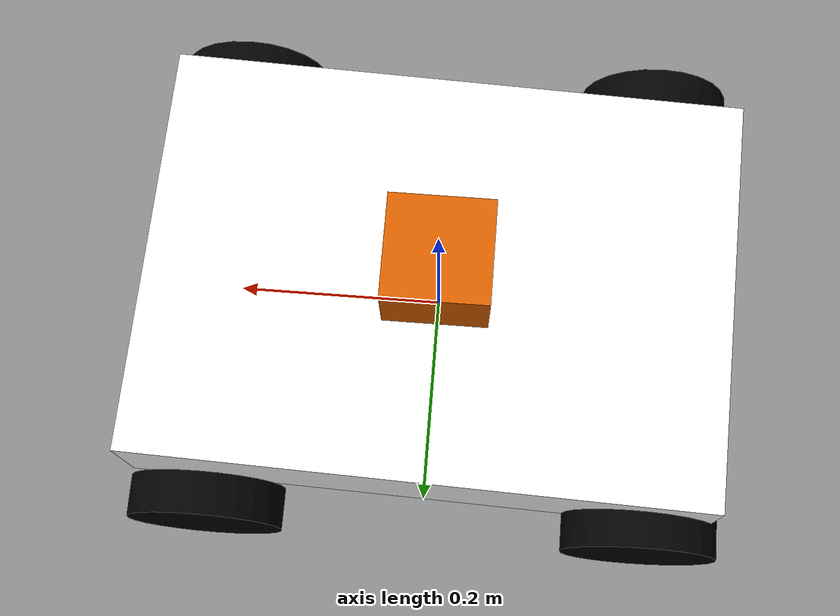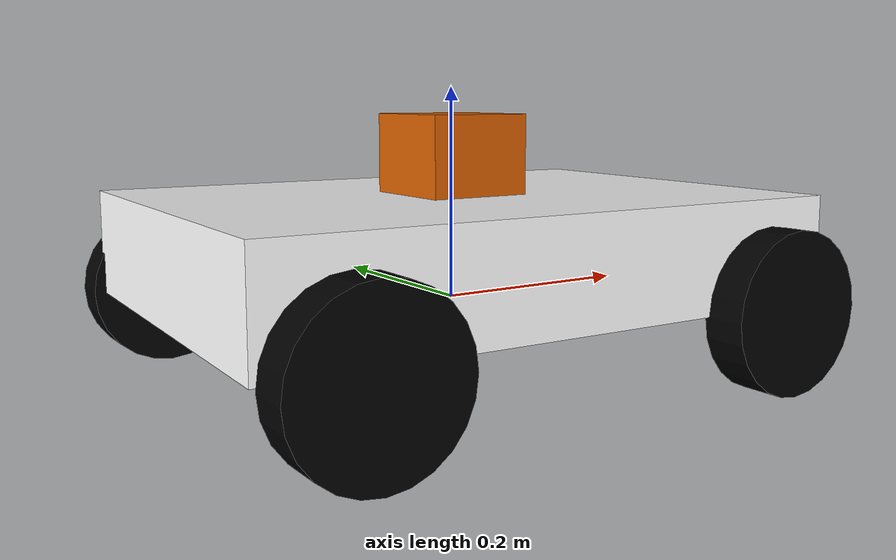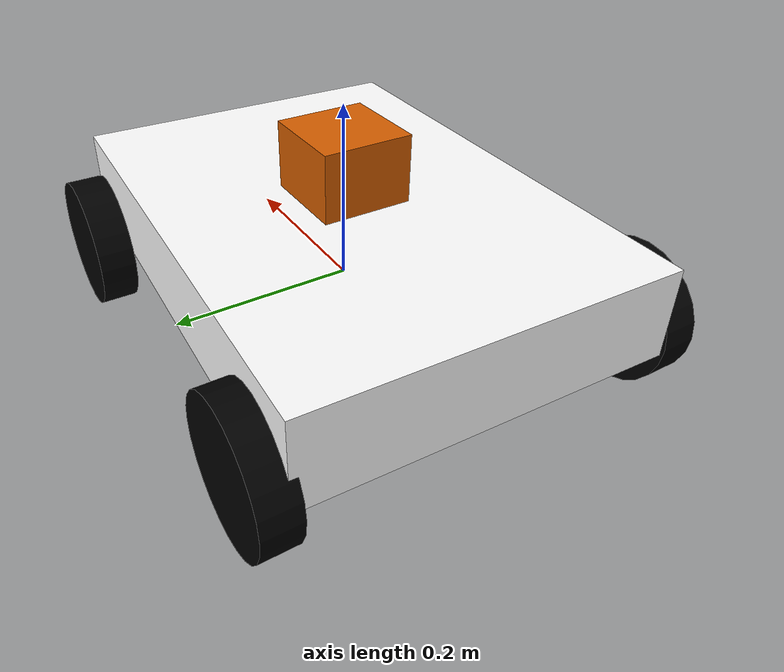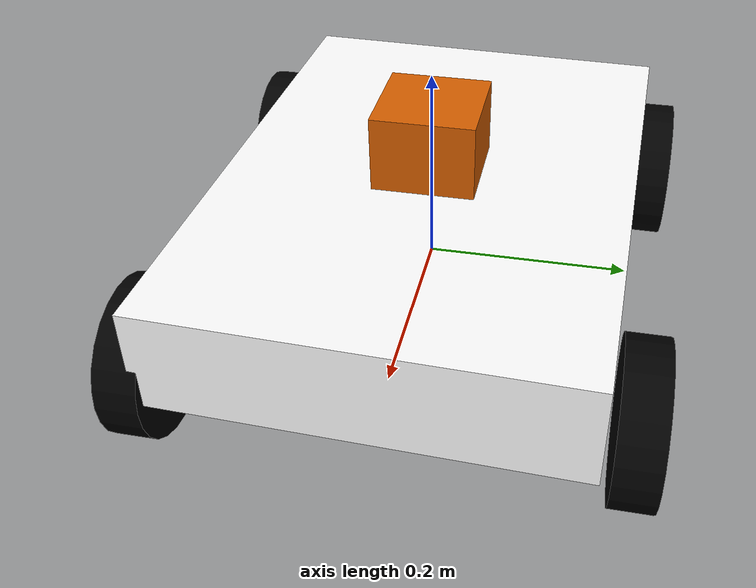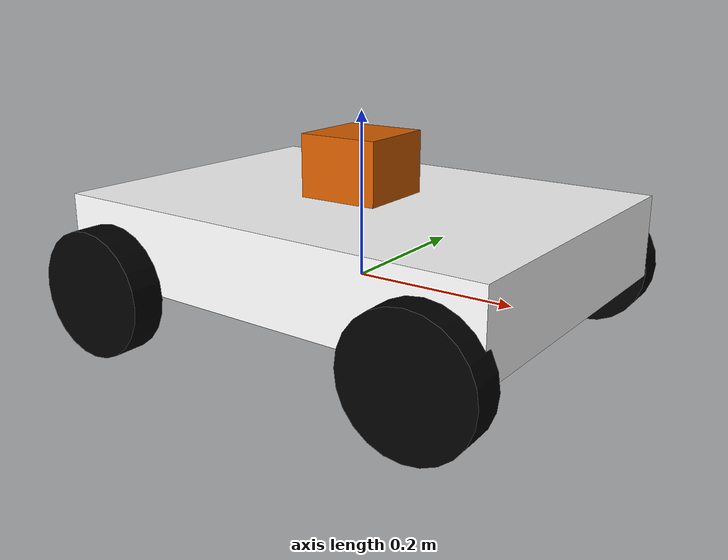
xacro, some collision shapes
<?xml version="1.0"?>

<robot xmlns:xacro="http://www.ros.org/wiki/xacro"
 	xmlns:sensor="http://playerstage.sourceforge.net/gazebo/xmlschema/#sensor"
    	xmlns:controller="http://playerstage.sourceforge.net/gazebo/xmlschema/#controller"
    	xmlns:interface="http://playerstage.sourceforge.net/gazebo/xmlschema/#interface"
	name="robot1_xacro">

	<xacro:property name="length_wheel" value="0.04" />
	<xacro:property name="radius_wheel" value="0.075" />
	<!--xacro:property name="camera_link" value="0.05" /-->
	<xacro:macro name="default_inertial" params="mass">
               <inertial>
                       <mass value="${mass}" />
                       <inertia ixx="1.0" ixy="0.0" ixz="0.0"
                                iyy="1.0" iyz="0.0"
                                izz="1.0" />
               </inertial>
	</xacro:macro>

	<link name="base_link">
   		<visual>
			<geometry>
      				<box size="0.4 .56 .1"/>
     			</geometry>
			<origin rpy="0 0 1.54" xyz="0 0 0.05"/>
			<material name="white">
				<color rgba="1 1 1 1"/>
			</material>
   		</visual>
		<collision>
			<geometry>
       				<box size="0.48 .56 0.1"/>
			</geometry>
		</collision>
		<xacro:default_inertial mass="10"/>
 	</link>

 	<link name="wheel_1">
   		<visual>
     			<geometry>
       				<cylinder length="${length_wheel}" radius="${radius_wheel}"/>
     			</geometry>
			<origin rpy="0 0 0" xyz="0 0 0"/>
   			<material name="black">
				<color rgba="0 0 0 1"/>
			</material>
		</visual>
		<collision>
			<geometry>
       				<cylinder length="${length_wheel}" radius="${radius_wheel}"/>
			</geometry>
		</collision>
		<xacro:default_inertial mass="1"/>
 	</link>

 	<link name="wheel_2">
   		<visual>
     			<geometry>
       				<cylinder length="${length_wheel}" radius="${radius_wheel}"/>
     			</geometry>
			<origin rpy="0 0 0" xyz="0 0 0"/>
   			<material name="black"/>
   		</visual>
		<collision>
			<geometry>
       				<cylinder length="${length_wheel}" radius="${radius_wheel}"/>
			</geometry>
		</collision>
		<xacro:default_inertial mass="1"/>

 	</link>

 	<link name="wheel_3">
   		<visual>
     			<geometry>
       				<cylinder length="${length_wheel}" radius="${radius_wheel}"/>
     			</geometry>

			<origin rpy="0 0 0" xyz="0 0 0"/>
   			<material name="black"/>
   		</visual>
		<collision>
			<geometry>
       				<cylinder length="${length_wheel}" radius="${radius_wheel}"/>
			</geometry>
		</collision>
		<xacro:default_inertial mass="1"/>
 	</link>

 	<link name="wheel_4">
   		<visual>
     			<geometry>
       				<cylinder length="${length_wheel}" radius="${radius_wheel}"/>
     			</geometry>
			<origin rpy="0 0 0" xyz="0 0 0" />
   			<material name="black"/>
   		</visual>
		<collision>
			<geometry>
       				<cylinder length="${length_wheel}" radius="${radius_wheel}"/>
			</geometry>
		</collision>
		<xacro:default_inertial mass="1"/>

 	</link>

 <joint name="base_to_wheel1" type="continuous">
   <parent link="base_link"/>
   <child link="wheel_1"/>
   <origin rpy="-1.5707 0 0" xyz="0.21 0.22 0"/>
   <axis xyz="0 0 1" />
 </joint>

 <joint name="base_to_wheel2" type="continuous">
   <axis xyz="0 0 1" />
   <anchor xyz="0 0 0" />
   <limit effort="100" velocity="100" />
   <parent link="base_link"/>
   <child link="wheel_2"/>
   <origin rpy="-1.5707 0 0" xyz="-0.21 0.22 0"/>
</joint>

 <joint name="base_to_wheel3" type="continuous">
   <parent link="base_link"/>
   <axis xyz="0 0 1" />
   <child link="wheel_3"/>
   <origin rpy="-1.5707 0 0" xyz="0.21 -0.22 0"/>
 </joint>

 <joint name="base_to_wheel4" type="continuous">
   <parent link="base_link"/>
   <axis xyz="0 0 1" />
   <child link="wheel_4"/>
   <origin rpy="-1.5707 0 0" xyz="-0.21 -0.22 0"/>
 </joint>

  <!-- Camera -->

  <!-- Hokuyo joint -->
  <joint name="hokuyo_joint" type="fixed">
    <origin xyz="0.0 0.0 0.125" rpy="0 0 0"/>
    <parent link="base_link"/>
    <axis xyz="0 1 0" />
    <child link="hokuyo_link"/>
  </joint>

  <!-- Hokuyo Laser -->
  <link name="hokuyo_link">
    <collision>
      <origin xyz="0 0 0" rpy="0 0 0"/>
      <geometry>
	<box size="0.1 0.1 0.1"/>
      </geometry>
    </collision>

    <visual>
      <origin xyz="0 0 0" rpy="0 0 0"/>
      <geometry>
        <mesh filename="package://robot1_description/meshes/hokuyo.dae"/>
      </geometry>
    </visual>

    <inertial>
      <mass value="1e-5" />
      <origin xyz="0 0 0" rpy="0 0 0"/>
      <inertia ixx="1e-6" ixy="0" ixz="0" iyy="1e-6" iyz="0" izz="1e-6" />
    </inertial>
  </link>

  <!-- Drive controller -->
<gazebo>
  <plugin name="skid_steer_drive_controller" filename="libgazebo_ros_skid_steer_drive.so">
    <updateRate>100.0</updateRate>
    <robotNamespace>/</robotNamespace>
    <leftFrontJoint>base_to_wheel1</leftFrontJoint>
    <rightFrontJoint>base_to_wheel3</rightFrontJoint>
    <leftRearJoint>base_to_wheel2</leftRearJoint>
    <rightRearJoint>base_to_wheel4</rightRearJoint>
    <wheelSeparation>4</wheelSeparation>
    <wheelDiameter>0.1</wheelDiameter>
    <robotBaseFrame>base_link</robotBaseFrame>
    <torque>1</torque>
    <topicName>cmd_vel</topicName>
    <broadcastTF>0</broadcastTF>
  </plugin>
</gazebo>

</robot>
